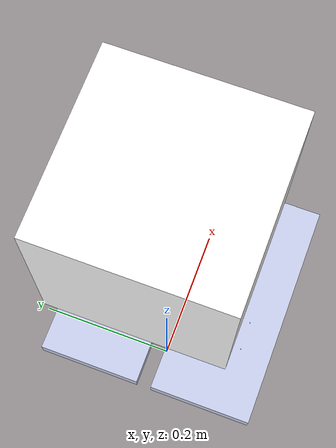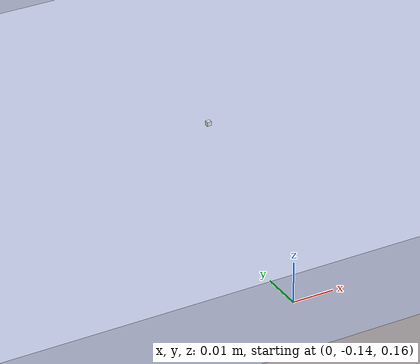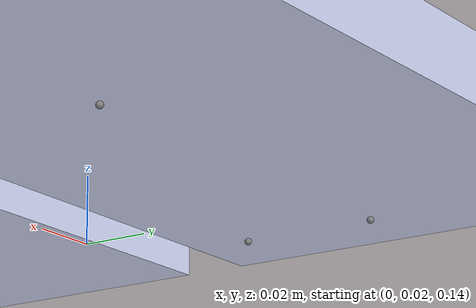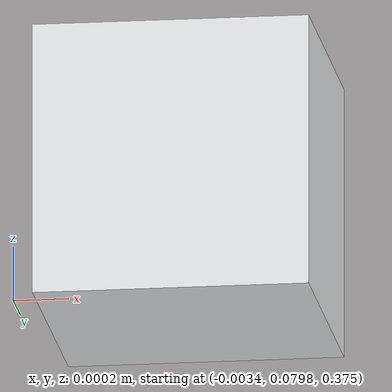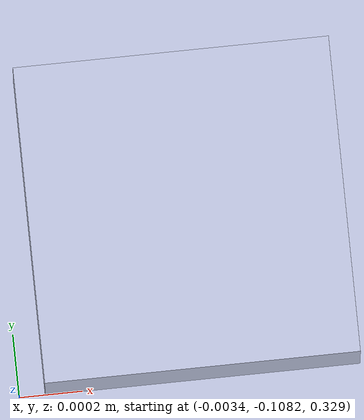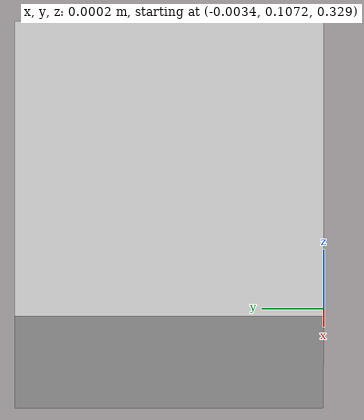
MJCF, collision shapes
<mujoco model="hunter">
  <compiler angle="radian" meshdir="meshes/"/>

  <default>
    <default class="hunter">
      <joint damping="1" armature="0.1"/>
      <default class="visual">
        <geom type="mesh" contype="0" conaffinity="0" group="1" density="0" rgba="0.75294 0.75294 0.75294 1"/>
      </default>
      <default class="collision">
        <geom group="3" mass="0" density="0"/>
        <default class="foot">
          <geom type="sphere" size=".001"/>
          <default class="foot1">
            <geom size="0.001" contype="0" conaffinity="0" density="0"/>
          </default>
          <default class="foot2">
            <geom size="0.001"/>
          </default>
          <default class="foot3">
            <geom size="0.001"/>
          </default>
          <default class="foot4">
            <geom size="0.001"/>
          </default>
        </default>
      </default>
      <site size="0.001" rgba="0.5 0.5 0.5 0.3" group="4"/>
    </default>
    <default class="hunter_motor">
      <motor gear="1" ctrllimited="true" ctrlrange="-100  100" />
    </default>
  </default>

    <asset>
        <mesh name="base_link" file="base_link.stl" />
        <mesh name="l_hip_pitch_link" file="l_hip_pitch_link.stl" />
        <mesh name="l_hip_roll_link" file="l_hip_roll_link.stl" />
        <mesh name="l_thigh_link" file="l_thigh_link.stl" />
        <mesh name="l_calf_link" file="l_calf_link.stl" />
        <mesh name="l_ankle_pitch_link" file="l_ankle_pitch_link.stl" />
        <mesh name="l_ankle_roll_link" file="l_ankle_roll_link.stl" />
        <mesh name="r_hip_pitch_link" file="r_hip_pitch_link.stl" />
        <mesh name="r_hip_roll_link" file="r_hip_roll_link.stl" />
        <mesh name="r_thigh_link" file="r_thigh_link.stl" />
        <mesh name="r_calf_link" file="r_calf_link.stl" />
        <mesh name="r_ankle_pitch_link" file="r_ankle_pitch_link.stl" />
        <mesh name="r_ankle_roll_link" file="r_ankle_roll_link.stl" />

    </asset>

  <worldbody>
        <light mode="targetbodycom" target="base_link" pos="2 0 2.5"/>
        <body name="base_link" pos="0 0 0.5" childclass="hunter">
            <freejoint/>
            <inertial pos="0.00080912 -8.753E-05 0.03920549" quat="1 0 0 0" mass="1.82" diaginertia="0.00829787 0.00916809 0.00411404" />
            <geom type="mesh" contype="0" conaffinity="0" group="1" rgba="1 1 1 1" mesh="base_link" />
            <geom size="0.1 0.1 0.1" pos="0 0 0.08" type="box" rgba="1 1 1 0" />
            <site name="imu" pos="0 0 0"/>
            <geom type="mesh" contype="0" conaffinity="0" group="1" rgba="0.79216 0.81961 0.93333 1" mesh="base_link" />
            <geom size="0.05 0.05 0.05" pos="0 0 0.08" type="box" rgba="0.79216 0.81961 0.93333 1" />
            <geom size="0.0075 0.0075 0.002" type="box" contype="0" conaffinity="0" group="1" />
            <body name="leg_l1_link" pos="-0.0028186 0.0482 -0.031">
                <inertial pos="0.0010765 0.030923 -0.00028479" quat="0.0142487 0.688307 0.103743 0.717822" mass="0.37475" diaginertia="0.000203872 0.000193061 0.000188317" />
                <joint name="leg_l1_joint" pos="0 0 0" axis="0 1 0" limited="true" range="-1.5 1.5" />
                <geom type="mesh" contype="0" conaffinity="0" group="1" rgba="0.89804 0.91765 0.92941 1" mesh="l_hip_pitch_link" />
                <geom size="0.0005 0.0005 0.0005" type="box" rgba="0.89804 0.91765 0.92941 1" />
                <body name="leg_l2_link" pos="0.0245 0.032 0">
                    <inertial pos="-0.025798 0.00024695 -0.059965" quat="0.712751 -0.0772627 -0.0796054 0.692589" mass="0.41506" diaginertia="0.000442349 0.000383181 0.000238861" />
                    <joint name="leg_l2_joint" pos="0 0 0" axis="1 0 0" limited="true" range="-1.5 1.5" />
                    <geom type="mesh" contype="0" conaffinity="0" group="1" rgba="0.79216 0.81961 0.93333 1" mesh="l_hip_roll_link" />
                    <geom size="0.0005 0.0005 0.0005" type="box" rgba="0.79216 0.81961 0.93333 1" />
                    <body name="leg_l3_link" pos="-0.0245 0 -0.0935">
                        <inertial pos="0 -0.00286926 -0.0254156" quat="0.632955 0.774189 0 0" mass="0.120981" diaginertia="0.00013405 0.000100222 6.29478e-05" />
                        <joint name="leg_l3_joint" pos="0 0 0" axis="0 0 1" limited="true" range="-1.5 1.5" />
                        <geom type="mesh" contype="0" conaffinity="0" group="1" rgba="0.89804 0.91765 0.92941 1" mesh="l_thigh_link" />
                        <geom size="0.0005 0.0005 0.0005" type="box" rgba="0.89804 0.91765 0.92941 1" />
                        <body name="leg_l4_link" pos="0 0.0275 -0.046">
                            <inertial pos="4.686e-05 -0.024357 -0.0698324" quat="0.705543 -0.000997519 -0.00114574 0.708665" mass="0.760191" diaginertia="0.00327684 0.0032569 0.000316823" />
                            <joint name="leg_l4_joint" pos="0 0 0" axis="0 1 0" limited="true" range="-1 3" />
                            <geom type="mesh" contype="0" conaffinity="0" group="1" rgba="0.75294 0.75294 0.75294 1" mesh="l_calf_link" />
                            <geom size="0.0005 0.0005 0.0005" type="box" rgba="0.75294 0.75294 0.75294 1" />
                            <body name="leg_l5_link" pos="0 0 -0.14">
                                <inertial pos="0.0257768 -0.0285458 0" quat="0.52988 0.468217 -0.52988 0.468217" mass="0.132231" diaginertia="0.00013716 9.89216e-05 6.97784e-05" />
                                <joint name="leg_l5_joint" pos="0 0 0" axis="0 1 0" limited="true" range="-1 1" />
                                <geom type="mesh" contype="0" conaffinity="0" group="1" rgba="0.89804 0.91765 0.92941 1" mesh="l_ankle_pitch_link" />
                                <geom size="0.0005 0.0005 0.0005" type="box" rgba="0.89804 0.91765 0.92941 1" />
                                <body name="l_ankle_roll_link" pos="0.051 -0.0275 0">
                                    <inertial pos="0.0111341 0.000167085 -0.0183736" quat="0.592187 0.382894 0.382294 0.597125" mass="0.62347" diaginertia="0.00108535 0.000979327 0.000474977" />
                                    <joint name="leg_l6_joint" pos="0 0 0" axis="1 0 0" limited="true" range="-1 1" />
                                    <geom type="mesh" contype="0" conaffinity="0" group="1" rgba="0.89804 0.91765 0.92941 1" mesh="l_ankle_roll_link" />
                                    <geom class="collision" size="0.16 0.07 0.01" type="box" pos="0.02 0 -0.025" rgba="0.79216 0.81961 0.93333 1" />
                                      <body name="leg_l_f1_link" pos="0.05 0.02 -0.05">
                                        <inertial pos="0 0 0" mass="0.01" diaginertia="1e-06 1e-06 1e-06"/>
                                        <geom class="foot1"/>
                                        <geom class="foot2"/>
                                        <geom class="foot3"/>
                                        <geom class="foot4"/>
                                        <site name="leg_l_f1_site" pos="0 0 0"/>
                                      </body>
                                      <body name="leg_l_f2_link" pos="0.05 -0.02 -0.05">
                                        <inertial pos="0 0 0" mass="0.01" diaginertia="1e-06 1e-06 1e-06"/>
                                        <geom class="foot1"/>
                                        <geom class="foot2"/>
                                        <geom class="foot3"/>
                                        <geom class="foot4"/>
                                        <site name="leg_l_f2_site" pos="0 0 0"/>
                                      </body>
                                      <body name="leg_l_f3_link" pos="-0.07 0.02 -0.05">
                                        <inertial pos="0 0 0" mass="0.01" diaginertia="1e-06 1e-06 1e-06"/>
                                        <geom class="foot1"/>
                                        <geom class="foot2"/>
                                        <geom class="foot3"/>
                                        <geom class="foot4"/>
                                        <site name="leg_l_f3_site" pos="0 0 0"/>
                                      </body>
                                      <body name="leg_l_f4_link" pos="-0.07 -0.02 -0.05">
                                        <inertial pos="0 0 0" mass="0.01" diaginertia="1e-06 1e-06 1e-06"/>
                                        <geom class="foot1"/>
                                        <geom class="foot2"/>
                                        <geom class="foot3"/>
                                        <geom class="foot4"/>
                                        <site name="leg_l_f4_site" pos="0 0 0"/>
                                      </body>
                                </body>
                            </body>
                        </body>
                    </body>
                </body>
            </body>
            <body name="leg_r1_link" pos="-0.0028186 -0.0482 -0.031">
                <inertial pos="0.0010765 -0.030923 -0.00028479" quat="0.0142487 0.688307 0.103743 0.717822" mass="0.37475" diaginertia="0.000203872 0.000193061 0.000188317" />
                <joint name="leg_r1_joint" pos="0 0 0" axis="0 1 0" limited="true" range="-1.5 1.5" />
                <geom type="mesh" contype="0" conaffinity="0" group="1" rgba="0.79216 0.81961 0.93333 1" mesh="r_hip_pitch_link" />
                <geom size="0.0005 0.0005 0.0005" type="box" rgba="0.79216 0.81961 0.93333 1" />
                <body name="leg_r2_link" pos="0.0245 -0.032 0">
                    <inertial pos="-0.025798 0.00024695 -0.059965" quat="0.712751 -0.0772627 -0.0796054 0.692589" mass="0.41506" diaginertia="0.000442349 0.000383181 0.000238861" />
                    <joint name="leg_r2_joint" pos="0 0 0" axis="1 0 0" limited="true" range="-1.5 1.5" />
                    <geom type="mesh" contype="0" conaffinity="0" group="1" rgba="0.79216 0.81961 0.93333 1" mesh="r_hip_roll_link" />
                    <geom size="0.0005 0.0005 0.0005" type="box" rgba="0.79216 0.81961 0.93333 1" />
                    <body name="leg_r3_link" pos="-0.0245 0 -0.0935">
                        <inertial pos="0 0.00287888 -0.0254156" quat="0.773954 0.633242 0 0" mass="0.120981" diaginertia="0.00013404 0.000100211 6.29595e-05" />
                        <joint name="leg_r3_joint" pos="0 0 0" axis="0 0 1" limited="true" range="-1.5 1.5" />
                        <geom type="mesh" contype="0" conaffinity="0" group="1" rgba="0.89804 0.91765 0.92941 1" mesh="r_thigh_link" />
                        <geom size="0.0005 0.0005 0.0005" type="box" rgba="0.89804 0.91765 0.92941 1" />
                        <body name="leg_r4_link" pos="0 -0.0275 -0.046">
                            <inertial pos="4.686e-05 0.024357 -0.0698324" quat="0.705543 -0.000997519 -0.00114574 0.708665" mass="0.760191" diaginertia="0.00327684 0.0032569 0.000316823" />
                            <joint name="leg_r4_joint" pos="0 0 0" axis="0 1 0" limited="true" range="-1 3" />
                            <geom type="mesh" contype="0" conaffinity="0" group="1" rgba="0.79216 0.81961 0.93333 1" mesh="r_calf_link" />
                            <geom size="0.0005 0.0005 0.0005" type="box" rgba="0.79216 0.81961 0.93333 1" />
                            <body name="leg_r5_link" pos="0 0 -0.14">
                                <inertial pos="0.0257768 0.0285458 0" quat="0.468217 0.52988 -0.468217 0.52988" mass="0.132231" diaginertia="0.00013716 9.89216e-05 6.97784e-05" />
                                <joint name="leg_r5_joint" pos="0 0 0" axis="0 1 0" limited="true" range="-1 1" />
                                <geom type="mesh" contype="0" conaffinity="0" group="1" rgba="0.89804 0.91765 0.92941 1" mesh="r_ankle_pitch_link" />
                                <geom size="0.0005 0.0005 0.0005" type="box" rgba="0.89804 0.91765 0.92941 1" />
                                <body name="r_ankle_roll_link" pos="0.051 0.0275 0">
                                    <inertial pos="0.0111341 0.000167085 -0.0183736" quat="0.592187 0.382894 0.382294 0.597125" mass="0.62347" diaginertia="0.00108535 0.000979327 0.000474977" />
                                    <joint name="leg_r6_joint" pos="0 0 0" axis="1 0 0" limited="true" range="-1 1" />
                                    <geom type="mesh" contype="0" conaffinity="0" group="1" rgba="0.79216 0.81961 0.93333 1" mesh="r_ankle_roll_link" />
                                    <geom class="collision" size="0.16 0.07 0.01" type="box" pos="0.02 0 -0.025" rgba="0.79216 0.81961 0.93333 1" />
                                    <body name="leg_r_f1_link" pos="0.05 0.02 -0.05">
                                        <inertial pos="0 0 0" mass="0.01" diaginertia="1e-06 1e-06 1e-06"/>
                                        <geom class="foot1"/>
                                        <geom class="foot2"/>
                                        <geom class="foot3"/>
                                        <geom class="foot4"/>
                                        <site name="leg_r_f1_site" pos="0 0 0"/>
                                    </body>
                                    <body name="leg_r_f2_link" pos="0.05 -0.02 -0.05">
                                        <inertial pos="0 0 0" mass="0.01" diaginertia="1e-06 1e-06 1e-06"/>
                                        <geom class="foot1"/>
                                        <geom class="foot2"/>
                                        <geom class="foot3"/>
                                        <geom class="foot4"/>
                                        <site name="leg_r_f2_site" pos="0 0 0"/>
                                    </body>
                                    <body name="leg_r_f3_link" pos="-0.07 0.02 -0.05">
                                        <inertial pos="0 0 0" mass="0.01" diaginertia="1e-06 1e-06 1e-06"/>
                                        <geom class="foot1"/>
                                        <geom class="foot2"/>
                                        <geom class="foot3"/>
                                        <geom class="foot4"/>
                                        <site name="leg_r_f3_site" pos="0 0 0"/>
                                    </body>
                                    <body name="leg_r_f4_link" pos="-0.07 -0.02 -0.05">
                                        <inertial pos="0 0 0" mass="0.01" diaginertia="1e-06 1e-06 1e-06"/>
                                        <geom class="foot1"/>
                                        <geom class="foot2"/>
                                        <geom class="foot3"/>
                                        <geom class="foot4"/>
                                        <site name="leg_r_f4_site" pos="0 0 0"/>
                                    </body>
                                </body>
                            </body>
                        </body>
                    </body>
                </body>
            </body>
        </body>
  </worldbody>

  <actuator>
    <motor class="hunter_motor" name="leg_l1_joint" joint="leg_l1_joint"/>
    <motor class="hunter_motor" name="leg_l2_joint" joint="leg_l2_joint"/>
    <motor class="hunter_motor" name="leg_l3_joint" joint="leg_l3_joint"/>
    <motor class="hunter_motor" name="leg_l4_joint" joint="leg_l4_joint"/>
    <motor class="hunter_motor" name="leg_l5_joint" joint="leg_l5_joint"/>
    <motor class="hunter_motor" name="leg_l6_joint" joint="leg_l6_joint"/>

    <motor class="hunter_motor" name="leg_r1_joint" joint="leg_r1_joint"/>
    <motor class="hunter_motor" name="leg_r2_joint" joint="leg_r2_joint"/>
    <motor class="hunter_motor" name="leg_r3_joint" joint="leg_r3_joint"/>
    <motor class="hunter_motor" name="leg_r4_joint" joint="leg_r4_joint"/>
    <motor class="hunter_motor" name="leg_r5_joint" joint="leg_r5_joint"/>
    <motor class="hunter_motor" name="leg_r6_joint" joint="leg_r6_joint"/>

  </actuator>

  <sensor>
    <accelerometer name="accel" site="imu"/>
    <gyro name="gyro" site="imu"/>

    <touch name="touch_L_f1" site="leg_l_f1_site"/>
    <touch name="touch_L_f2" site="leg_l_f2_site"/>
    <touch name="touch_L_f3" site="leg_l_f3_site"/>
    <touch name="touch_L_f4" site="leg_l_f4_site"/>
    <touch name="touch_R_f1" site="leg_r_f1_site"/>
    <touch name="touch_R_f2" site="leg_r_f2_site"/>
    <touch name="touch_R_f3" site="leg_r_f3_site"/>
    <touch name="touch_R_f4" site="leg_r_f4_site"/>

    <jointpos name="jpos_L1" joint="leg_l1_joint" />
    <jointpos name="jpos_L2" joint="leg_l2_joint" />
    <jointpos name="jpos_L3" joint="leg_l3_joint" />
    <jointpos name="jpos_L4" joint="leg_l4_joint" />
    <jointpos name="jpos_L5" joint="leg_l5_joint" />
    <jointpos name="jpos_L6" joint="leg_l6_joint" />
    <jointpos name="jpos_R1" joint="leg_r1_joint" />
    <jointpos name="jpos_R2" joint="leg_r2_joint" />
    <jointpos name="jpos_R3" joint="leg_r3_joint" />
    <jointpos name="jpos_R4" joint="leg_r4_joint" />
    <jointpos name="jpos_R5" joint="leg_r5_joint" />
    <jointpos name="jpos_R6" joint="leg_r6_joint" />

    <jointvel name="jvel_L1" joint="leg_l1_joint" />
    <jointvel name="jvel_L2" joint="leg_l2_joint" />
    <jointvel name="jvel_L3" joint="leg_l3_joint" />
    <jointvel name="jvel_L4" joint="leg_l4_joint" />
    <jointvel name="jvel_L5" joint="leg_l5_joint" />
    <jointvel name="jvel_L6" joint="leg_l6_joint" />
    <jointvel name="jvel_R1" joint="leg_r1_joint" />
    <jointvel name="jvel_R2" joint="leg_r2_joint" />
    <jointvel name="jvel_R3" joint="leg_r3_joint" />
    <jointvel name="jvel_R4" joint="leg_r4_joint" />
    <jointvel name="jvel_R5" joint="leg_r5_joint" />
    <jointvel name="jvel_R6" joint="leg_r6_joint" />
  </sensor>

</mujoco>
